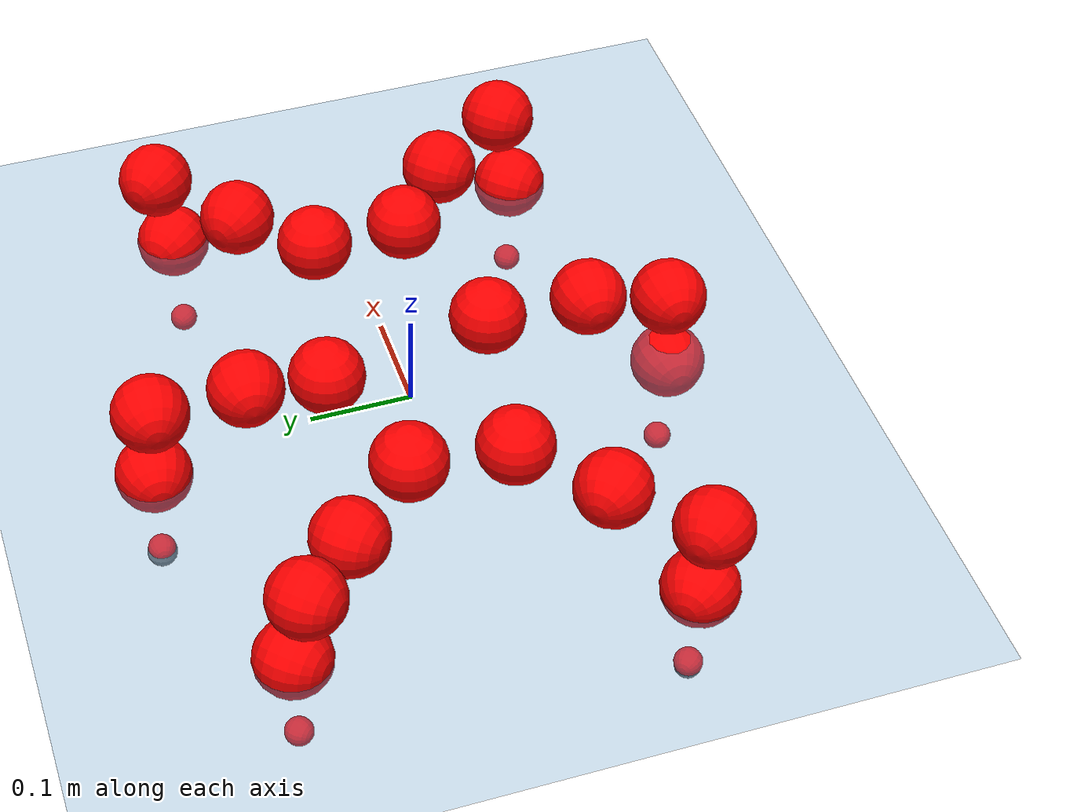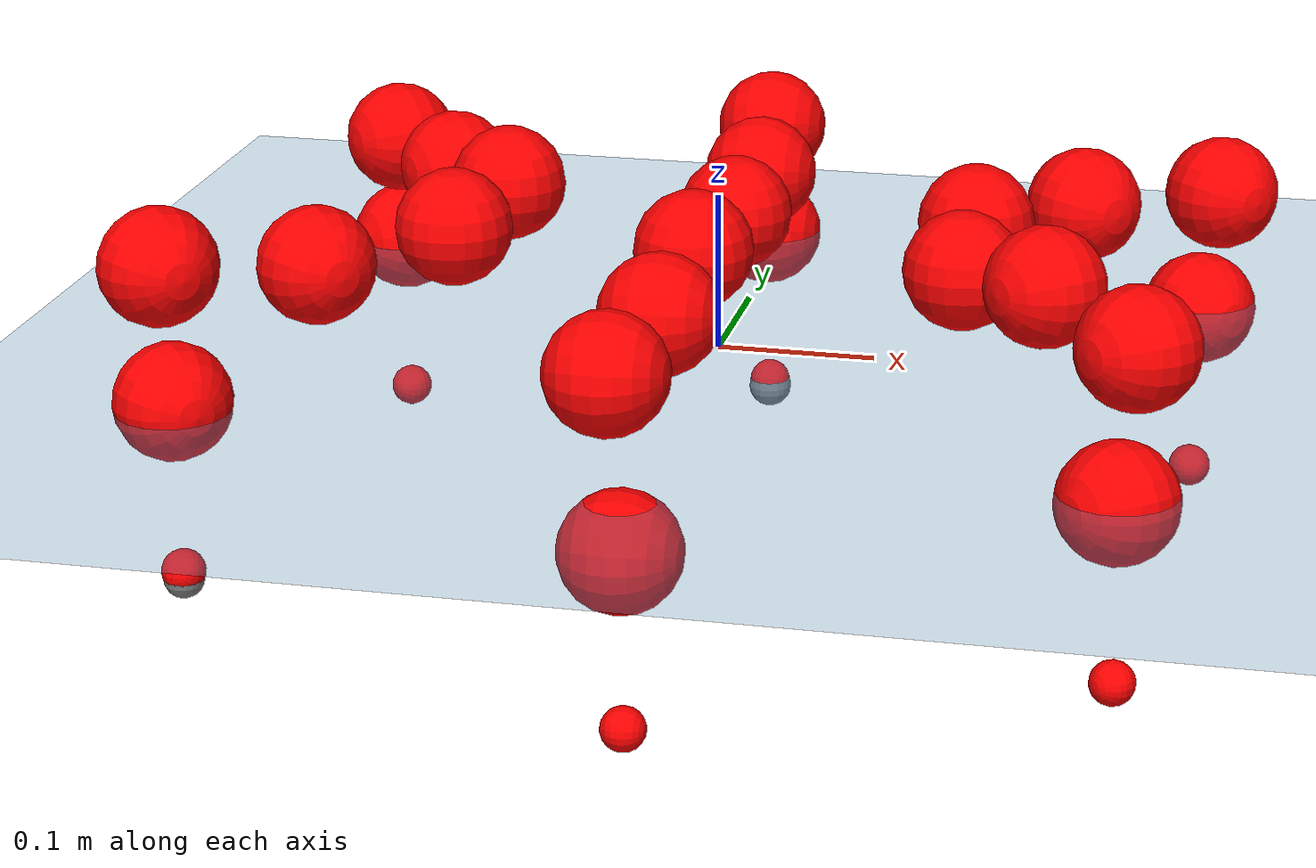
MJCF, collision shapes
<mujoco model="Golem">
  <compiler angle="radian" assetdir="assets" balanceinertia="true" inertiafromgeom="false"/>

  <option timestep="0.005" density="1.2" viscosity="2e-05"/>

  <size nkey="1"/>

  <visual>
    <quality shadowsize="8192"/>
    <map shadowclip="0.5"/>
  </visual>

  <default>
    <default class="/">
      <joint armature="0.01" damping="0.01" frictionloss="0.01"/>
      <geom contype="0" conaffinity="0" group="1" solref="-1000 -80"/>
      <site size="0.01 0.005 0.005" group="5"/>
      <general forcelimited="true" biastype="affine" gainprm="25" biasprm="0 -25 -0.5"/>
      <default class="visual">
        <geom type="mesh" group="2"/>
      </default>
      <default class="collision">
        <geom group="3"/>
      </default>
      <default class="foot">
        <geom size="0.01 0 0" condim="6" group="4" priority="1" solimp="0.015 1 0.01"/>
      </default>
      <default class="reward_collision_sphere">
        <geom group="5" rgba="1 0 0 1"/>
      </default>
    </default>
  </default>

  <asset>
    <texture type="skybox" colorspace="auto" name="//unnamed_texture_0" builtin="gradient" rgb1="0.95 0.95 0.95" rgb2="0.95 0.95 0.95" width="100" height="600"/>
    <texture type="2d" colorspace="auto" name="texplane" builtin="checker" rgb1="0.345 0.575 0.748" rgb2="0.345 0.575 0.748" markrgb="1 1 1" width="512" height="512"/>
    <material name="MatPlane" class="/" texture="texplane" texuniform="true" texrepeat="2 2" specular="0.9"/>
    <mesh name="body" class="/" file="body.stl" scale="0.001 0.001 0.001"/>
    <mesh name="coxa" class="/" file="coxa.stl" scale="0.001 0.001 0.001"/>
    <mesh name="femur" class="/" file="femur.stl" scale="0.001 0.001 0.001"/>
    <mesh name="tibia" class="/" file="tibia.stl" scale="0.001 0.001 0.001"/>
    <mesh name="tarsus" class="/" file="tarsus.stl" scale="0.001 0.001 0.001"/>
  </asset>

  <worldbody>
    <geom name="floor" class="/" size="100 100 0.125" type="plane" group="0" material="MatPlane"/>
    <light name="toplight_shadow" class="/" pos="0 0 5" dir="0.0990148 0.0990148 -0.990148" type="directional" ambient="0.04 0.04 0.04" diffuse="0.55 0.55 0.55" specular="0.12 0.12 0.12"/>
    <light name="toplight_fill" class="/" pos="0 0 5" dir="0.0990148 0.0990148 -0.990148" type="directional" castshadow="false" ambient="0.04 0.04 0.04" diffuse="0.3 0.3 0.3" specular="0.08 0.08 0.08"/>
    <body name="trunk" pos="0.00794099 -0.00207201 0.0151327" quat="1 0.000140409 -0.000162278 -2.36656e-05">
      <inertial pos="-0.00824864 -0.000652897 -0.0138801" quat="0.998472 0.0204105 -0.0510125 0.00584247" mass="2.41266" diaginertia="0.0139601 0.00305455 0.00553936"/>
      <joint name="//unnamed_joint_0" type="free"/>
      <geom name="//unnamed_geom_1" class="/" pos="0 0 0.058214" quat="1 0 0 0" type="mesh" rgba="0.9 0.9 0.9 1" mesh="body"/>
      <site name="imu" class="/" pos="0.123757 0.0128399 0.0639013" size="0.00920864"/>
      <camera name="track" class="/" pos="0 -1.63351 0" quat="0.707107 0.707107 0 0" mode="trackcom"/>
      <camera name="ego_camera" class="/" pos="0.134711 0 0.0909593" quat="-0.5 -0.5 0.5 0.5"/>
      <body name="coxa_RR" pos="-0.187264 -0.0693625 0.0693834" quat="0.384094 0.000281563 0.000560502 -0.923294">
        <inertial pos="0.000701682 0.0148977 -0.00289667" quat="0.999763 -0.0071262 -0.0193073 -0.00703539" mass="0.189273" diaginertia="0.0163347 0.00365361 0.00694312"/>
        <joint name="coxa_joint_RR" class="/" pos="0 0 0" axis="0.0834255 -0.00327449 -0.996509" stiffness="0.000423395" range="-3.13029 3.34787" armature="0.0133534" damping="0.0433375" frictionloss="0.0078084"/>
        <geom name="//unnamed_geom_2" class="/" type="mesh" rgba="0.2 0.2 0.2 1" mesh="coxa"/>
        <geom name="//unnamed_geom_3" class="reward_collision_sphere" size="0.0368346" pos="-0.0310873 0 0"/>
        <body name="femur_RR" pos="0.0645697 0.000766972 -0.00766362" quat="0.500319 -0.499529 0.500403 0.499748">
          <inertial pos="0.00464808 -0.00893576 0.00887399" quat="1 2.06521e-05 0.000251715 -0.000200484" mass="0.161922" diaginertia="0.0124097 0.00372395 0.00634367"/>
          <joint name="femur_joint_RR" class="/" pos="0 0 0" axis="-0.00141843 0.0018672 -0.999997" stiffness="0.0317193" range="-3.24057 3.41799" armature="0.0141144" damping="0" frictionloss="0.00419279"/>
          <geom name="//unnamed_geom_4" class="/" type="mesh" rgba="0.9 0.9 0.9 1" mesh="femur"/>
          <geom name="//unnamed_geom_5" class="reward_collision_sphere" size="0.0368346"/>
          <body name="tibia_RR" pos="-0.0135536 -0.0986689 -0.0104033" quat="-0.0022227 0.999991 0.0030703 -0.00171737">
            <inertial pos="0.0128657 0.00962075 0.000279215" quat="0.99836 -0.0142933 -0.00137427 0.0554209" mass="0.155254" diaginertia="0.0143895 0.0039259 0.00679877"/>
            <joint name="tibia_joint_RR" class="/" pos="0 0 0" axis="0.0350426 -0.0256943 0.999055" range="-2.84648 3.28104" armature="0.0138231" damping="0.0418455" frictionloss="0.00800376"/>
            <geom name="//unnamed_geom_6" class="/" type="mesh" rgba="0.2 0.2 0.2 1" mesh="tibia"/>
            <geom name="//unnamed_geom_7" class="reward_collision_sphere" size="0.0368346"/>
            <body name="tarsus_RR" pos="0.0861692 -0.00380383 -0.000276866" quat="0.999997 0.00253759 -0.000182672 0.000323268">
              <inertial pos="0.0594437 -0.0136615 0.0109283" quat="0.485432 0.528098 0.488375 0.496948" mass="0.147978" diaginertia="0.0114865 0.00308949 0.00597742"/>
              <joint name="tarsus_joint_RR" class="/" pos="0 0 0" axis="-0.00758131 -0.00506982 0.999958" stiffness="0.0717918" range="-3.20276 3.15015" armature="0.00346852" damping="0" frictionloss="0.00374975"/>
              <geom name="//unnamed_geom_8" class="/" type="mesh" rgba="0.9 0.9 0.9 1" mesh="tarsus"/>
              <geom name="foot_1" class="foot" size="0.0128615" pos="0.116059 0 0" quat="0 -0.707107 0 0.707107"/>
              <geom name="//unnamed_geom_10" class="reward_collision_sphere" size="0.0368346"/>
              <geom name="//unnamed_geom_11" class="reward_collision_sphere" size="0.013813" pos="0.111396 0 0"/>
              <site name="foot_1" class="foot" pos="0.116059 0 0" quat="0 -0.707107 0 0.707107" size="0.00920864"/>
            </body>
          </body>
        </body>
      </body>
      <body name="coxa_RM" pos="-0.00660876 -0.104233 0.0730906" quat="0.711763 0.00412076 -0.000439378 -0.702408">
        <inertial pos="0.0131612 -0.000246113 0.007574" quat="0.999863 -0.0152257 -0.00276332 -0.00584885" mass="0.190085" diaginertia="0.0151747 0.00446637 0.00718699"/>
        <joint name="coxa_joint_RM" class="/" pos="0 0 0" axis="-0.0106731 0.0196938 -0.999749" stiffness="0.038761" range="-2.8238 3.13712" armature="0.0115742" damping="0" frictionloss="0.0096162"/>
        <geom name="//unnamed_geom_12" class="/" type="mesh" rgba="0.2 0.2 0.2 1" mesh="coxa"/>
        <geom name="//unnamed_geom_13" class="reward_collision_sphere" size="0.0368346" pos="-0.0310873 0 0"/>
        <body name="femur_RM" pos="0.0707822 0.0013553 -0.00667679" quat="0.499587 -0.494715 0.503715 0.501937">
          <inertial pos="-0.00790421 0.00725239 -0.0070234" quat="0.9978 -0.0062869 -0.0268172 -0.0603015" mass="0.133843" diaginertia="0.0100304 0.00353906 0.00543607"/>
          <joint name="femur_joint_RM" class="/" pos="0 0 0" axis="-0.00541844 0.00324964 -0.99998" stiffness="0.0755723" range="-3.12269 3.13521" armature="0.00741866" damping="0.0170914" frictionloss="0.0124684"/>
          <geom name="//unnamed_geom_14" class="/" type="mesh" rgba="0.9 0.9 0.9 1" mesh="femur"/>
          <geom name="//unnamed_geom_15" class="reward_collision_sphere" size="0.0368346"/>
          <body name="tibia_RM" pos="0.00866417 -0.0776862 -0.013239" quat="-0.00137393 0.999998 0.00109272 0.000453735">
            <inertial pos="0.00617558 -0.0165272 -0.00169375" quat="0.999731 -0.00297503 -0.0178119 -0.0145772" mass="0.125637" diaginertia="0.00957539 0.00292712 0.00448974"/>
            <joint name="tibia_joint_RM" class="/" pos="0 0 0" axis="0.0210233 0.0419419 0.998899" range="-3.35409 3.47338" armature="0.00475723" damping="0.0797412" frictionloss="0.00836745"/>
            <geom name="//unnamed_geom_16" class="/" type="mesh" rgba="0.2 0.2 0.2 1" mesh="tibia"/>
            <geom name="//unnamed_geom_17" class="reward_collision_sphere" size="0.0368346"/>
            <body name="tarsus_RM" pos="0.101795 0.0138097 -0.00891968" quat="0.999985 -0.00168963 -0.00454443 0.00272699">
              <inertial pos="0.0550288 -0.0153891 -0.00664017" quat="0.500097 0.5001 0.499633 0.500171" mass="0.212837" diaginertia="0.013603 0.00390365 0.00781613"/>
              <joint name="tarsus_joint_RM" class="/" pos="0 0 0" axis="-0.0458874 -0.00628056 0.998927" stiffness="0.0114284" range="-3.12456 3.22356" armature="0.00495438" damping="0" frictionloss="0.00962015"/>
              <geom name="//unnamed_geom_18" class="/" type="mesh" rgba="0.9 0.9 0.9 1" mesh="tarsus"/>
              <geom name="foot_2" class="foot" size="0.00682073" pos="0.116059 0 0" quat="0 -0.707107 0 0.707107"/>
              <geom name="//unnamed_geom_20" class="reward_collision_sphere" size="0.0368346"/>
              <geom name="//unnamed_geom_21" class="reward_collision_sphere" size="0.013813" pos="0.111396 0 0"/>
              <site name="foot_2" class="foot" pos="0.116059 0 0" quat="0 -0.707107 0 0.707107" size="0.00920864"/>
            </body>
          </body>
        </body>
      </body>
      <body name="coxa_RF" pos="0.174581 -0.0613226 0.060426" quat="0.924237 0.00144508 -0.00469691 -0.381788">
        <inertial pos="0.0137514 -0.0049178 -0.0123465" quat="0.998936 0.0173696 0.0351598 -0.0242618" mass="0.114428" diaginertia="0.0106574 0.00348107 0.00557203"/>
        <joint name="coxa_joint_RF" class="/" pos="0 0 0" axis="-0.00933227 0.0450873 -0.998939" stiffness="0.0187525" range="-2.94992 3.13041" armature="0.0153157" damping="0" frictionloss="0.00465739"/>
        <geom name="//unnamed_geom_22" class="/" type="mesh" rgba="0.2 0.2 0.2 1" mesh="coxa"/>
        <geom name="//unnamed_geom_23" class="reward_collision_sphere" size="0.0368346" pos="-0.0310873 0 0"/>
        <body name="femur_RF" pos="0.0470219 0.00159797 0.0102494" quat="0.496449 -0.505424 0.499636 0.498447">
          <inertial pos="0.00371336 0.00790235 -0.00324327" quat="0.999878 0.00173403 -0.0138239 -0.00708606" mass="0.217754" diaginertia="0.0117339 0.00469593 0.00835757"/>
          <joint name="femur_joint_RF" class="/" pos="0 0 0" axis="0.00330482 -0.0103327 -0.999941" stiffness="0.0778806" range="-3.2819 3.42953" armature="0.0160379" damping="0" frictionloss="0.0164818"/>
          <geom name="//unnamed_geom_24" class="/" type="mesh" rgba="0.9 0.9 0.9 1" mesh="femur"/>
          <geom name="//unnamed_geom_25" class="reward_collision_sphere" size="0.0368346"/>
          <body name="tibia_RF" pos="0.00616608 -0.103173 -0.0152992" quat="-0.00035871 1 -0.000315147 -0.00030519">
            <inertial pos="0.0139368 0.00491075 -0.000948068" quat="0.999959 -0.0069643 0.00558781 -0.0014426" mass="0.170234" diaginertia="0.0154567 0.00408281 0.00707447"/>
            <joint name="tibia_joint_RF" class="/" pos="0 0 0" axis="-0.0145527 -0.0417726 0.999021" stiffness="0.0359564" range="-3.33844 3.09392" armature="0.00953388" damping="0.0727359" frictionloss="0.00487249"/>
            <geom name="//unnamed_geom_26" class="/" type="mesh" rgba="0.2 0.2 0.2 1" mesh="tibia"/>
            <geom name="//unnamed_geom_27" class="reward_collision_sphere" size="0.0368346"/>
            <body name="tarsus_RF" pos="0.0887478 0.00337396 0.0138326" quat="0.999985 -0.0034064 0.00250483 0.00352622">
              <inertial pos="0.0753826 0.00937262 0.00123166" quat="0.453191 0.564071 0.497331 0.478648" mass="0.162815" diaginertia="0.0130635 0.0034743 0.00819672"/>
              <joint name="tarsus_joint_RF" class="/" pos="0 0 0" axis="0.0374759 -0.0252509 0.998978" range="-3.03693 3.14895" armature="0.0156011" damping="0.00900137" frictionloss="0.0151905"/>
              <geom name="//unnamed_geom_28" class="/" type="mesh" rgba="0.9 0.9 0.9 1" mesh="tarsus"/>
              <geom name="foot_3" class="foot" size="0.00914091" pos="0.116059 0 0" quat="0 -0.707107 0 0.707107"/>
              <geom name="//unnamed_geom_30" class="reward_collision_sphere" size="0.0368346"/>
              <geom name="//unnamed_geom_31" class="reward_collision_sphere" size="0.013813" pos="0.111396 0 0"/>
              <site name="foot_3" class="foot" pos="0.116059 0 0" quat="0 -0.707107 0 0.707107" size="0.00920864"/>
            </body>
          </body>
        </body>
      </body>
      <body name="coxa_LR" pos="-0.178793 0.07158 0.0702686" quat="0.382062 -0.0017531 0.00163789 0.924134">
        <inertial pos="-0.00696353 -0.00069213 0.00186817" quat="0.997242 0.0481178 0.0373562 -0.0424051" mass="0.146152" diaginertia="0.0116935 0.00270979 0.00601873"/>
        <joint name="coxa_joint_LR" class="/" pos="0 0 0" axis="0.037535 -0.00862786 -0.999258" range="-3.12253 2.97748" armature="0.00306044" damping="0" frictionloss="0.00612781"/>
        <geom name="//unnamed_geom_32" class="/" type="mesh" rgba="0.2 0.2 0.2 1" mesh="coxa"/>
        <geom name="//unnamed_geom_33" class="reward_collision_sphere" size="0.0368346" pos="-0.0310873 0 0"/>
        <body name="femur_LR" pos="0.0603199 -0.0101328 -0.012413" quat="0.498529 -0.497998 0.498687 0.504755">
          <inertial pos="0.0128803 0.0145619 -0.0145511" quat="0.999995 -0.00256158 0.00193144 0.000628283" mass="0.114135" diaginertia="0.00949096 0.00268738 0.00598549"/>
          <joint name="femur_joint_LR" class="/" pos="0 0 0" axis="-0.0544018 -0.0524734 0.997139" stiffness="0.0423193" range="-2.92245 3.371" armature="0.00145492" damping="0" frictionloss="0.0150945"/>
          <geom name="//unnamed_geom_34" class="/" type="mesh" rgba="0.9 0.9 0.9 1" mesh="femur"/>
          <geom name="//unnamed_geom_35" class="reward_collision_sphere" size="0.0368346"/>
          <body name="tibia_LR" pos="-0.00292538 -0.0766116 0.000299094" quat="-0.000481641 1 0.000594956 0.000568593">
            <inertial pos="-0.000929254 0.0144957 1.95397e-05" quat="0.999067 -0.00249941 -0.0419618 -0.00991659" mass="0.203588" diaginertia="0.0152344 0.00366828 0.00842485"/>
            <joint name="tibia_joint_LR" class="/" pos="0 0 0" axis="-0.0369477 0.0584518 -0.997606" stiffness="0.0687679" range="-3.1322 3.41329" armature="0.0093658" damping="0" frictionloss="0.00423733"/>
            <geom name="//unnamed_geom_36" class="/" type="mesh" rgba="0.2 0.2 0.2 1" mesh="tibia"/>
            <geom name="//unnamed_geom_37" class="reward_collision_sphere" size="0.0368346"/>
            <body name="tarsus_LR" pos="0.0756284 0.013298 0.00996222" quat="0.999986 0.00452019 -6.78998e-06 0.00267853">
              <inertial pos="0.0696629 -0.00781957 0.0118565" quat="0.496087 0.49671 0.506619 0.500513" mass="0.176228" diaginertia="0.0118059 0.00320486 0.00584698"/>
              <joint name="tarsus_joint_LR" class="/" pos="0 0 0" axis="-0.0075215 2.37269e-05 -0.999972" stiffness="0.0292042" range="-2.90476 3.19868" armature="0.0149072" damping="0.0216873" frictionloss="0.00991315"/>
              <geom name="//unnamed_geom_38" class="/" type="mesh" rgba="0.9 0.9 0.9 1" mesh="tarsus"/>
              <geom name="foot_4" class="foot" size="0.00946301" pos="0.116059 0 0" quat="0.707107 0 -0.707107 0"/>
              <geom name="//unnamed_geom_40" class="reward_collision_sphere" size="0.0368346"/>
              <geom name="//unnamed_geom_41" class="reward_collision_sphere" size="0.013813" pos="0.111396 0 0"/>
              <site name="foot_4" class="foot" pos="0.116059 0 0" quat="0.707107 0 -0.707107 0" size="0.00920864"/>
            </body>
          </body>
        </body>
      </body>
      <body name="coxa_LM" pos="-0.0147734 0.117374 0.0484517" quat="0.707064 0.000619958 8.46047e-06 0.707149">
        <inertial pos="-0.0100351 -0.0065439 -0.00718551" quat="0.999042 -0.0248571 0.00945902 0.0347453" mass="0.186018" diaginertia="0.0103524 0.00410008 0.00594527"/>
        <joint name="coxa_joint_LM" class="/" pos="0 0 0" axis="0.0149558 0.0680376 -0.997571" stiffness="0.0202406" range="-3.29792 2.82482" armature="0.00900041" damping="0.0121509" frictionloss="0.00941784"/>
        <geom name="//unnamed_geom_42" class="/" type="mesh" rgba="0.2 0.2 0.2 1" mesh="coxa"/>
        <geom name="//unnamed_geom_43" class="reward_collision_sphere" size="0.0368346" pos="-0.0310873 0 0"/>
        <body name="femur_LM" pos="0.046066 -0.00123475 0.00522403" quat="0.499143 -0.504698 0.500592 0.495524">
          <inertial pos="-0.0113245 0.00380551 0.0107199" quat="0.999991 0.00363129 0.00198466 -0.000679652" mass="0.108307" diaginertia="0.0107411 0.00311759 0.00449012"/>
          <joint name="femur_joint_LM" class="/" pos="0 0 0" axis="-0.0583309 0.00890161 0.998258" range="-2.85447 3.4221" armature="0.00656121" damping="0" frictionloss="0.00424483"/>
          <geom name="//unnamed_geom_44" class="/" type="mesh" rgba="0.9 0.9 0.9 1" mesh="femur"/>
          <geom name="//unnamed_geom_45" class="reward_collision_sphere" size="0.0368346"/>
          <body name="tibia_LM" pos="-0.00624131 -0.0920542 0.0105822" quat="-0.00197669 0.999995 -2.73145e-05 -0.00229369">
            <inertial pos="-0.0107107 -0.0090439 -0.00117591" quat="0.999401 -0.0158737 0.0219971 0.0214977" mass="0.124689" diaginertia="0.0105979 0.00382823 0.00482345"/>
            <joint name="tibia_joint_LM" class="/" pos="0 0 0" axis="0.0162842 -0.0509003 -0.998571" stiffness="0.0835162" range="-3.10775 3.12115" armature="0.0154613" damping="0.043539" frictionloss="0.00973777"/>
            <geom name="//unnamed_geom_46" class="/" type="mesh" rgba="0.2 0.2 0.2 1" mesh="tibia"/>
            <geom name="//unnamed_geom_47" class="reward_collision_sphere" size="0.0368346"/>
            <body name="tarsus_LM" pos="0.0787792 0.00298092 -0.00443175" quat="1 -4.2253e-05 -4.19792e-05 -4.0707e-05">
              <inertial pos="0.0575338 0.00257985 -0.0123262" quat="0.470929 0.488876 0.525961 0.512437" mass="0.170933" diaginertia="0.01419 0.00306034 0.00620809"/>
              <joint name="tarsus_joint_LM" class="/" pos="0 0 0" axis="-0.00233615 0.00739107 -0.99997" stiffness="0.0533759" range="-3.01259 3.11506" armature="0.0110249" damping="0" frictionloss="0.00881017"/>
              <geom name="//unnamed_geom_48" class="/" type="mesh" rgba="0.9 0.9 0.9 1" mesh="tarsus"/>
              <geom name="foot_5" class="foot" size="0.0148346" pos="0.116059 0 0" quat="0.707107 0 -0.707107 0"/>
              <geom name="//unnamed_geom_50" class="reward_collision_sphere" size="0.0368346"/>
              <geom name="//unnamed_geom_51" class="reward_collision_sphere" size="0.013813" pos="0.111396 0 0"/>
              <site name="foot_5" class="foot" pos="0.116059 0 0" quat="0.707107 0 -0.707107 0" size="0.00920864"/>
            </body>
          </body>
        </body>
      </body>
      <body name="coxa_LF" pos="0.169669 0.0749378 0.06222" quat="0.925056 -0.00640157 0.00104873 0.379776">
        <inertial pos="0.000452787 -0.000492411 -0.0123061" quat="0.99961 0.0146432 0.0122194 -0.0204112" mass="0.171209" diaginertia="0.0114099 0.00480663 0.00674429"/>
        <joint name="coxa_joint_LF" class="/" pos="0 0 0" axis="0.0249073 0.0592353 -0.997933" stiffness="0.0234757" range="-3.22482 3.07723" armature="0.0079506" damping="0" frictionloss="0.0149732"/>
        <geom name="//unnamed_geom_52" class="/" type="mesh" rgba="0.2 0.2 0.2 1" mesh="coxa"/>
        <geom name="//unnamed_geom_53" class="reward_collision_sphere" size="0.0368346" pos="-0.0310873 0 0"/>
        <body name="femur_LF" pos="0.0565905 0.00165963 -0.00286514" quat="0.499254 -0.498249 0.503198 0.499284">
          <inertial pos="0.000729696 -0.00206525 -0.0143102" quat="0.998553 -0.0447117 -0.0274431 -0.0118517" mass="0.122063" diaginertia="0.0135745 0.00383465 0.00620821"/>
          <joint name="femur_joint_LF" class="/" pos="0 0 0" axis="0.004898 -0.0586107 0.998269" stiffness="0.00538126" range="-3.20286 3.12167" armature="0.00955846" damping="0.00215157" frictionloss="0.00304312"/>
          <geom name="//unnamed_geom_54" class="/" type="mesh" rgba="0.9 0.9 0.9 1" mesh="femur"/>
          <geom name="//unnamed_geom_55" class="reward_collision_sphere" size="0.0368346"/>
          <body name="tibia_LF" pos="0.00454849 -0.104817 -0.0126534" quat="0.00248717 0.999972 0.00516024 0.00482691">
            <inertial pos="-0.00397585 0.00270899 0.0120112" quat="0.997298 0.004029 -0.0709165 -0.0187198" mass="0.13908" diaginertia="0.00921363 0.00351048 0.00604813"/>
            <joint name="tibia_joint_LF" class="/" pos="0 0 0" axis="-0.00288835 -0.000388303 -0.999996" stiffness="0.0500455" range="-3.46922 2.97943" armature="0.0109854" damping="0" frictionloss="0.0091543"/>
            <geom name="//unnamed_geom_56" class="/" type="mesh" rgba="0.2 0.2 0.2 1" mesh="tibia"/>
            <geom name="//unnamed_geom_57" class="reward_collision_sphere" size="0.0368346"/>
            <body name="tarsus_LF" pos="0.0773216 -0.0126719 -0.000224035" quat="0.999991 0.00382973 -0.00133213 -0.00142273">
              <inertial pos="0.0776273 0.00648432 -0.000761148" quat="0.498831 0.497039 0.502295 0.501817" mass="0.19907" diaginertia="0.0151223 0.00464765 0.00576599"/>
              <joint name="tarsus_joint_LF" class="/" pos="0 0 0" axis="-0.0673331 0.00141652 -0.99773" stiffness="0.0578315" range="-3.14659 3.38848" armature="0.0023163" damping="0" frictionloss="0.00181248"/>
              <geom name="//unnamed_geom_58" class="/" type="mesh" rgba="0.9 0.9 0.9 1" mesh="tarsus"/>
              <geom name="foot_6" class="foot" size="0.00733747" pos="0.116059 0 0" quat="0.707107 0 -0.707107 0"/>
              <geom name="//unnamed_geom_60" class="reward_collision_sphere" size="0.0368346"/>
              <geom name="//unnamed_geom_61" class="reward_collision_sphere" size="0.013813" pos="0.111396 0 0"/>
              <site name="foot_6" class="foot" pos="0.116059 0 0" quat="0.707107 0 -0.707107 0" size="0.00920864"/>
            </body>
          </body>
        </body>
      </body>
    </body>
  </worldbody>

  <contact>
    <pair class="/" geom1="floor" geom2="foot_1" name="//unnamed_contact_0"/>
    <pair class="/" geom1="floor" geom2="foot_2" name="//unnamed_contact_1"/>
    <pair class="/" geom1="floor" geom2="foot_3" name="//unnamed_contact_2"/>
    <pair class="/" geom1="floor" geom2="foot_4" name="//unnamed_contact_3"/>
    <pair class="/" geom1="floor" geom2="foot_5" name="//unnamed_contact_4"/>
    <pair class="/" geom1="floor" geom2="foot_6" name="//unnamed_contact_5"/>
  </contact>

  <actuator>
    <general name="coxa_joint_RR" class="/" joint="coxa_joint_RR" forcerange="-4.21338 4.21338" gainprm="20.0911" biasprm="0 -20.0911 -0.423266"/>
    <general name="femur_joint_RR" class="/" joint="femur_joint_RR" forcerange="-3.85831 3.85831" gainprm="20.0911" biasprm="0 -20.0911 -0.423266"/>
    <general name="tibia_joint_RR" class="/" joint="tibia_joint_RR" forcerange="-9.68508 9.68508" gainprm="20.0911" biasprm="0 -20.0911 -0.423266"/>
    <general name="tarsus_joint_RR" class="/" joint="tarsus_joint_RR" forcerange="-9.8742 9.8742" gainprm="20.0911" biasprm="0 -20.0911 -0.423266"/>
    <general name="coxa_joint_RM" class="/" joint="coxa_joint_RM" forcerange="-10.3171 10.3171" gainprm="20.0911" biasprm="0 -20.0911 -0.423266"/>
    <general name="femur_joint_RM" class="/" joint="femur_joint_RM" forcerange="-5.69109 5.69109" gainprm="20.0911" biasprm="0 -20.0911 -0.423266"/>
    <general name="tibia_joint_RM" class="/" joint="tibia_joint_RM" forcerange="-6.84159 6.84159" gainprm="20.0911" biasprm="0 -20.0911 -0.423266"/>
    <general name="tarsus_joint_RM" class="/" joint="tarsus_joint_RM" forcerange="-7.14674 7.14674" gainprm="20.0911" biasprm="0 -20.0911 -0.423266"/>
    <general name="coxa_joint_RF" class="/" joint="coxa_joint_RF" forcerange="-6.06476 6.06476" gainprm="20.0911" biasprm="0 -20.0911 -0.423266"/>
    <general name="femur_joint_RF" class="/" joint="femur_joint_RF" forcerange="-2.60663 2.60663" gainprm="20.0911" biasprm="0 -20.0911 -0.423266"/>
    <general name="tibia_joint_RF" class="/" joint="tibia_joint_RF" forcerange="-3.04637 3.04637" gainprm="20.0911" biasprm="0 -20.0911 -0.423266"/>
    <general name="tarsus_joint_RF" class="/" joint="tarsus_joint_RF" forcerange="-3.24619 3.24619" gainprm="20.0911" biasprm="0 -20.0911 -0.423266"/>
    <general name="coxa_joint_LR" class="/" joint="coxa_joint_LR" forcerange="-6.89859 6.89859" gainprm="20.0911" biasprm="0 -20.0911 -0.423266"/>
    <general name="femur_joint_LR" class="/" joint="femur_joint_LR" forcerange="-6.57746 6.57746" gainprm="20.0911" biasprm="0 -20.0911 -0.423266"/>
    <general name="tibia_joint_LR" class="/" joint="tibia_joint_LR" forcerange="-2.71214 2.71214" gainprm="20.0911" biasprm="0 -20.0911 -0.423266"/>
    <general name="tarsus_joint_LR" class="/" joint="tarsus_joint_LR" forcerange="-3.04858 3.04858" gainprm="20.0911" biasprm="0 -20.0911 -0.423266"/>
    <general name="coxa_joint_LM" class="/" joint="coxa_joint_LM" forcerange="-6.27382 6.27382" gainprm="20.0911" biasprm="0 -20.0911 -0.423266"/>
    <general name="femur_joint_LM" class="/" joint="femur_joint_LM" forcerange="-7.45069 7.45069" gainprm="20.0911" biasprm="0 -20.0911 -0.423266"/>
    <general name="tibia_joint_LM" class="/" joint="tibia_joint_LM" forcerange="-6.83244 6.83244" gainprm="20.0911" biasprm="0 -20.0911 -0.423266"/>
    <general name="tarsus_joint_LM" class="/" joint="tarsus_joint_LM" forcerange="-8.53473 8.53473" gainprm="20.0911" biasprm="0 -20.0911 -0.423266"/>
    <general name="coxa_joint_LF" class="/" joint="coxa_joint_LF" forcerange="-6.60947 6.60947" gainprm="20.0911" biasprm="0 -20.0911 -0.423266"/>
    <general name="femur_joint_LF" class="/" joint="femur_joint_LF" forcerange="-3.32283 3.32283" gainprm="20.0911" biasprm="0 -20.0911 -0.423266"/>
    <general name="tibia_joint_LF" class="/" joint="tibia_joint_LF" forcerange="-3.51093 3.51093" gainprm="20.0911" biasprm="0 -20.0911 -0.423266"/>
    <general name="tarsus_joint_LF" class="/" joint="tarsus_joint_LF" forcerange="-6.02888 6.02888" gainprm="20.0911" biasprm="0 -20.0911 -0.423266"/>
  </actuator>

  <sensor>
    <gyro site="imu" name="imu_angular_velocity"/>
    <velocimeter site="imu" name="imu_linear_velocity"/>
    <framelinvel objtype="site" objname="foot_1" name="foot_1_global_linear_velocity"/>
    <framelinvel objtype="site" objname="foot_2" name="foot_2_global_linear_velocity"/>
    <framelinvel objtype="site" objname="foot_3" name="foot_3_global_linear_velocity"/>
    <framelinvel objtype="site" objname="foot_4" name="foot_4_global_linear_velocity"/>
    <framelinvel objtype="site" objname="foot_5" name="foot_5_global_linear_velocity"/>
    <framelinvel objtype="site" objname="foot_6" name="foot_6_global_linear_velocity"/>
  </sensor>

  <keyframe>
    <key name="home" qpos="0 0 0.1457 1 0 0 0 0 0 0 0 0 0 0 0 0 0 0 0 0 0 0 0 0 0 0 0 0 0 0 0"/>
  </keyframe>
</mujoco>
